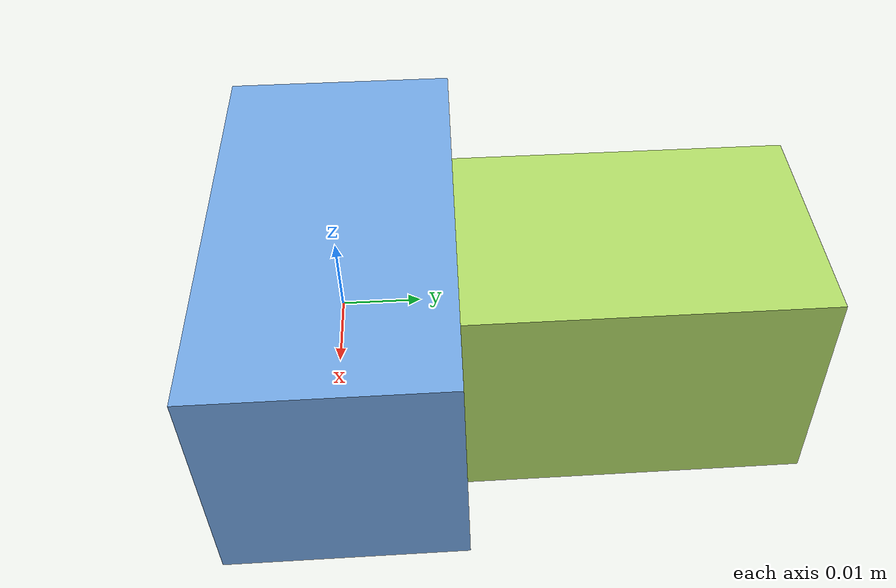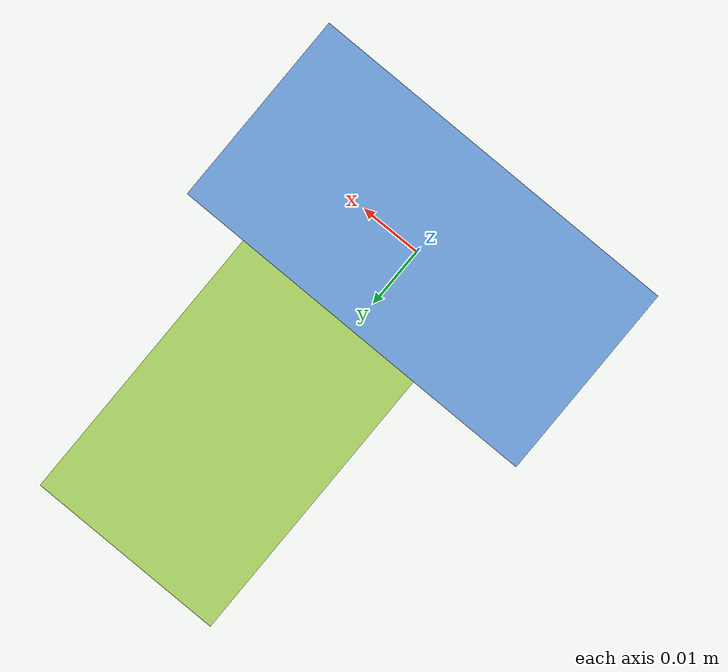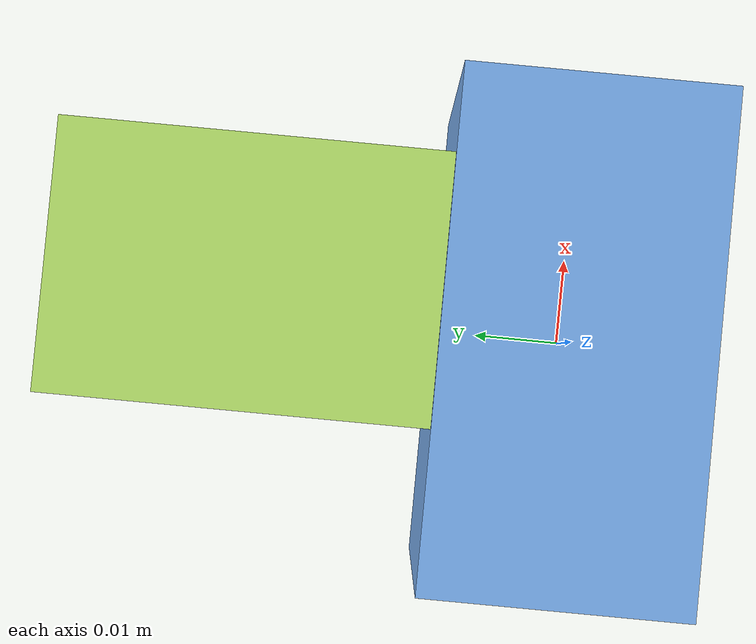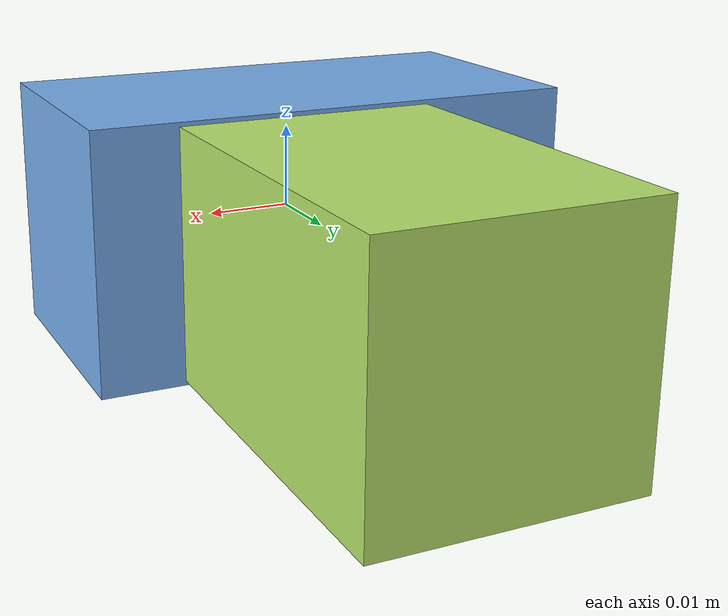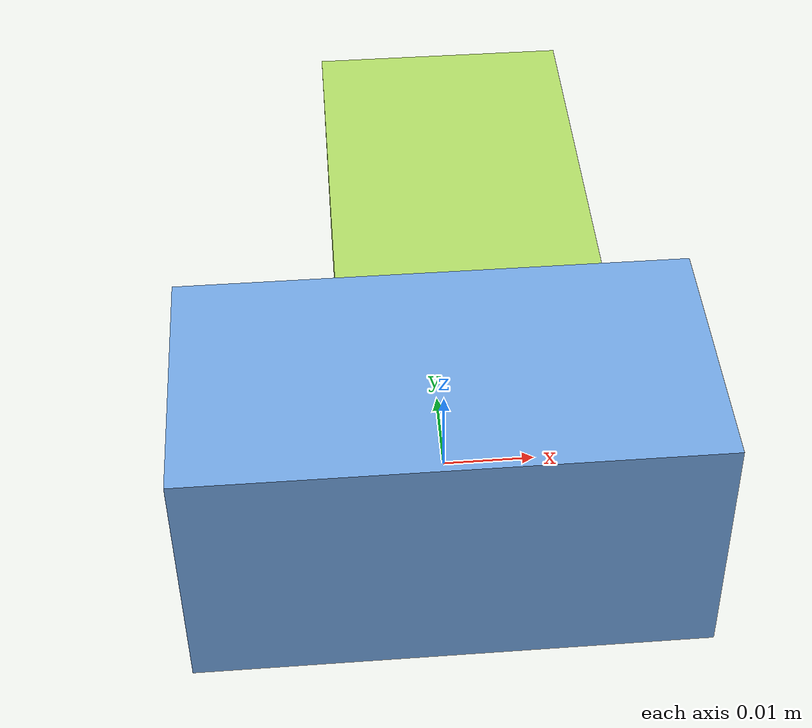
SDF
<sdf version="1.4"><world name="default"><model name="object0"><link name="link1"><pose>0 0 0 0 0 0</pose><inertial><pose>0 0 0 0 0 0</pose><mass>0.031202921680590995</mass><inertia><ixx>4.680438252088648e-06</ixx><ixy>0</ixy><iyy>1.1022163868064899e-05</iyy><ixz>0</ixz><iyz>0</iyz><izz>1.1022163868064899e-05</izz></inertia></inertial><visual name="link1_visual"><pose>0 0  0 0 0 0</pose><geometry><box><size>0.057783188297390736 0.03 0.03</size></box></geometry><material><diffuse>0.47200756721075754 0.6834303579138062 0.9343877278246877 1</diffuse></material></visual><collision><pose>0 0  0 0 0 0</pose><geometry><box><size>0.057783188297390736 0.03 0.03</size></box></geometry></collision></link><link name="link2"><pose>0.00408051387254206 0.022039594577196328 0 0 0 0</pose><inertial><pose>0 0 0 0 0 0</pose><mass>0.0389529668536466</mass><inertia><ixx>1.962085638573186e-05</ixx><ixy>0</ixy><iyy>5.651426274349894e-06</iyy><ixz>0</ixz><iyz>0</iyz><izz>1.9812375139428954e-05</izz></inertia></inertial><visual name="link2_visual"><pose>0 0  0 0 0 0</pose><geometry><box><size>0.03 0.07213512380304928 0.028999999999999998</size></box></geometry><material><diffuse>0.7278261953021247 0.9007946506564939 0.4229315912612069 1</diffuse></material></visual><collision><pose>0 0  0 0 0 0</pose><geometry><box><size>0.03 0.07213512380304928 0.028999999999999998</size></box></geometry></collision></link><joint name="link_joint_0" type="fixed"><parent>link1</parent><child>link2</child><pose>0 0 0 0 0 0</pose><axis><xyz>0 0 1</xyz></axis></joint></model></world></sdf>
